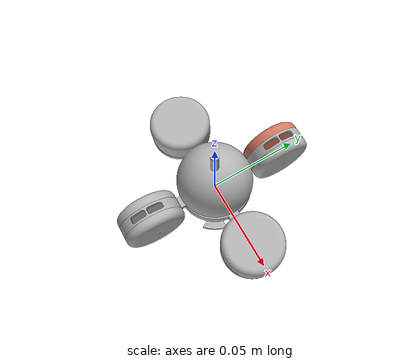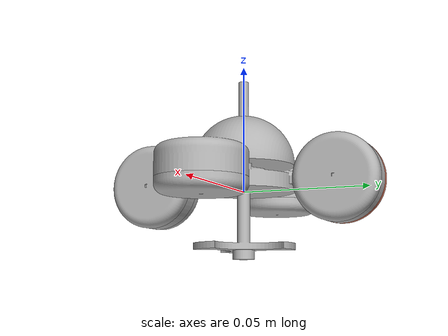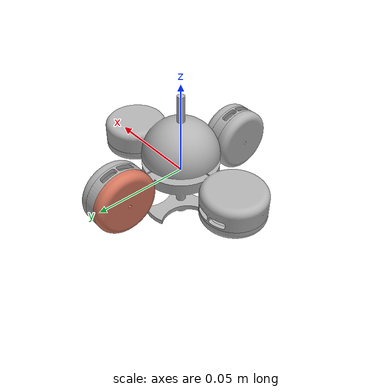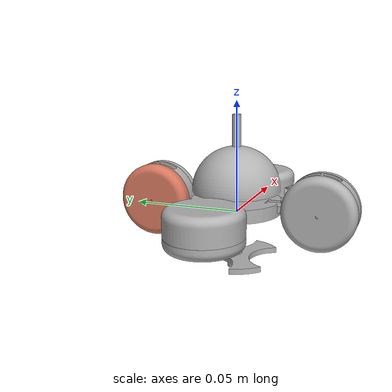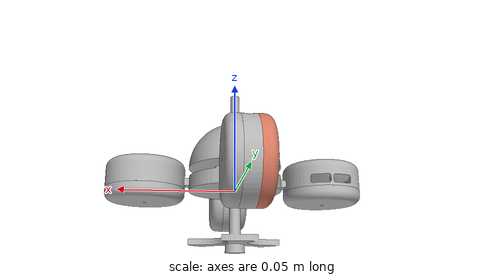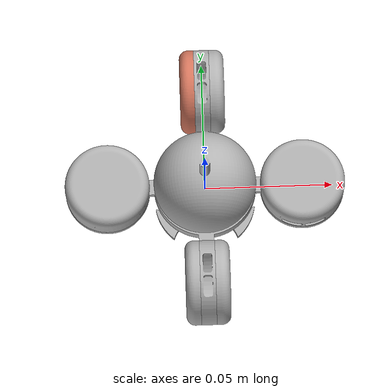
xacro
<?xml version="1.0" encoding="utf-8"?>
<robot name="Centroid_body" xmlns:xacro="http://www.ros.org/wiki/xacro">
  <!-- Dummy root link to prevent KDL inertia warning -->
  <link name="base_footprint"/>

  <joint name="base_footprint_joint" type="fixed">
    <parent link="base_footprint"/>
    <child link="base_link"/>
    <origin xyz="0 0 0" rpy="0 0 0"/>
  </joint>

  <link
    name="base_link">
    <inertial>
      <origin
        xyz="-4.8316E-11 3.2213E-18 0.0057577"
        rpy="0 0 0" />

      <mass
        value="0.039075" />

      <inertia
        ixx="7.9515E-06"
        ixy="-8.5637E-09"
        ixz="1.944E-14"
        iyy="7.7226E-06"
        iyz="-3.498E-22"
        izz="5.1331E-06" />
    </inertial>
    <visual>
      <origin
        xyz="0 0 0"
        rpy="0 0 0" />
      <geometry>
        <mesh
          filename="package://piezo_auv_description/meshes/base_link.STL" />
      </geometry>
      <material
        name="">
        <color
          rgba="0.69804 0.69804 0.69804 1" />
      </material>
    </visual>
    <collision>
      <origin
        xyz="0 0 0.012"
        rpy="0 0 0" />
        <geometry>
          <box size="0.10964625 0.11001523 0.0040815" />
        </geometry>
    </collision>
  </link>
  <gazebo reference="base_link">
    <material>Gazebo/Grey</material>
  </gazebo>

  <link
    name="left_jet_f">
    <inertial>
      <origin
        xyz="-4.3368E-19 0 -0.0038323"
        rpy="0 0 0" />
      <mass
        value="0.0075196" />
      <inertia
        ixx="4.9788E-07"
        ixy="-1.3062E-38"
        ixz="-1.0636E-23"
        iyy="4.9788E-07"
        iyz="-5.5228E-39"
        izz="9.6988E-07" />
    </inertial>
    <visual>
      <origin
        xyz="0 0 0"
        rpy="0 0 0" />
      <geometry>
        <mesh
          filename="package://piezo_auv_description/meshes/left_jet_f.STL" />
      </geometry>
      <material
        name="">
        <color
          rgba="0.83922 0.46667 0.36863 1" />
      </material>
    </visual>
    <collision>
      <origin xyz="0 0 -0.00335" rpy="0 0 0" />
      <geometry>
        <cylinder radius="0.0166" length="0.0067" />
      </geometry>
    </collision>

  </link>
  <gazebo reference="left_jet_f">
    <material>Gazebo/Orange</material>
  </gazebo>
  <joint
    name="left_jet_f_joint"
    type="fixed">
    <origin
      xyz="-0.0087 0.038482 0.0035"
      rpy="3.1416 1.5708 0" />
    <parent
      link="base_link" />
    <child
      link="left_jet_f" />
    <axis
      xyz="0 0 0" />
  </joint>
  <link
    name="left_jet_r">
    <inertial>
      <origin
        xyz="8.6736E-19 6.9389E-18 -0.0038323"
        rpy="0 0 0" />
      <mass
        value="0.0075196" />
      <inertia
        ixx="4.9788E-07"
        ixy="-1.4263E-39"
        ixz="8.4073E-24"
        iyy="4.9788E-07"
        iyz="2.2962E-39"
        izz="9.6988E-07" />
    </inertial>
    <visual>
      <origin
        xyz="0 0 0"
        rpy="0 0 0" />
      <geometry>
        <mesh
          filename="package://piezo_auv_description/meshes/left_jet_r.STL" />
      </geometry>
      <material
        name="">
        <color
          rgba="0.69804 0.69804 0.69804 1" />
      </material>
    </visual>
    <collision>
      <origin xyz="0 0 -0.00335" rpy="0 0 0" />
      <geometry>
        <cylinder radius="0.0166" length="0.0067" />
      </geometry>
    </collision>
  </link>
  <gazebo reference="left_jet_r">
    <material>Gazebo/Orange</material>
  </gazebo>
  <joint
    name="left_jet_r_joint"
    type="fixed">
    <origin
      xyz="0.0087 0.038482 0.0035"
      rpy="0 1.5708 0" />
    <parent
      link="base_link" />
    <child
      link="left_jet_r" />
    <axis
      xyz="0 0 0" />
  </joint>

  <link
    name="right_jet_f">
    <inertial>
      <origin
        xyz="0 2.7756E-17 -0.0038323"
        rpy="0 0 0" />
      <mass
        value="0.0075196" />
      <inertia
        ixx="4.9788E-07"
        ixy="3.1117E-38"
        ixz="-3.3862E-24"
        iyy="4.9788E-07"
        iyz="-3.2167E-21"
        izz="9.6988E-07" />
    </inertial>
    <visual>
      <origin
        xyz="0 0 0"
        rpy="0 0 0" />
      <geometry>
        <mesh
          filename="package://piezo_auv_description/meshes/right_jet_f.STL" />
      </geometry>
      <material
        name="">
        <color
          rgba="0.69804 0.69804 0.69804 1" />
      </material>
    </visual>
    <collision>
      <origin xyz="0 0 -0.00335" rpy="0 0 0" />
      <geometry>
        <cylinder radius="0.0166" length="0.0067" />
      </geometry>
    </collision>
  </link>
  <gazebo reference="right_jet_f">
    <material>Gazebo/Orange</material>
  </gazebo>
  <joint
    name="right_jet_f_joint"
    type="fixed">
    <origin
      xyz="-0.0087 -0.038482 0.0035"
      rpy="3.1416 1.5708 0" />
    <parent
      link="base_link" />
    <child
      link="right_jet_f" />
    <axis
      xyz="0 0 0" />
  </joint>

  <link
    name="right_jet_r">
    <inertial>
      <origin
        xyz="-3.4694E-17 0 -0.0038323"
        rpy="0 0 0" />
      <mass
        value="0.0075196" />
      <inertia
        ixx="4.9788E-07"
        ixy="3.5228E-38"
        ixz="3.3827E-21"
        iyy="4.9788E-07"
        iyz="-2.9636E-25"
        izz="9.6988E-07" />
    </inertial>
    <visual>
      <origin
        xyz="0 0 0"
        rpy="0 0 0" />
      <geometry>
        <mesh
          filename="package://piezo_auv_description/meshes/right_jet_r.STL" />
      </geometry>
      <material
        name="">
        <color
          rgba="0.69804 0.69804 0.69804 1" />
      </material>
    </visual>
    <collision>
      <origin xyz="0 0 -0.00335" rpy="0 0 0" />
      <geometry>
        <cylinder radius="0.0166" length="0.0067" />
      </geometry>
    </collision>
  </link>
  <gazebo reference="right_jet_r">
    <material>Gazebo/Orange</material>
  </gazebo>
  <joint
    name="right_jet_r_joint"
    type="fixed">
    <origin
      xyz="0.0087 -0.038482 0.0035"
      rpy="-1.5708 0 -1.5708" />
    <parent
      link="base_link" />
    <child
      link="right_jet_r" />
    <axis
      xyz="0 0 0" />
  </joint>

  <link
    name="hover_front">
    <inertial>
      <origin
        xyz="-1.2907E-18 0 -0.0038323"
        rpy="0 0 0" />
      <mass
        value="0.0075196" />
      <inertia
        ixx="4.9788E-07"
        ixy="-1.2994E-38"
        ixz="-1.5581E-25"
        iyy="4.9788E-07"
        iyz="6.5797E-24"
        izz="9.6988E-07" />
    </inertial>
    <visual>
      <origin
        xyz="0 0 0"
        rpy="0 0 0" />
      <geometry>
        <mesh
          filename="package://piezo_auv_description/meshes/hover_front.STL" />
      </geometry>
      <material
        name="">
        <color
          rgba="0.69804 0.69804 0.69804 1" />
      </material>
    </visual>
    <collision>
      <origin xyz="0 0 -0.00335" rpy="0 0 0" />
      <geometry>
        <cylinder radius="0.0166" length="0.0067" />
      </geometry>
    </collision>
  </link>
  <gazebo reference="hover_front">
    <material>Gazebo/Orange</material>
  </gazebo>
  <joint
    name="hover_front_joint"
    type="fixed">
    <origin
      xyz="0.0382758256318996 0 -0.0052"
      rpy="3.14159265358979 0 -1.5707963267949" />
    <parent
      link="base_link" />
    <child
      link="hover_front" />
    <axis
      xyz="0 0 0" />
  </joint>

  <link
    name="hover_rear">
    <inertial>
      <origin
        xyz="0 1.2125E-18 -0.0038323"
        rpy="0 0 0" />
      <mass
        value="0.0075196" />
      <inertia
        ixx="4.9788E-07"
        ixy="-5.5174E-38"
        ixz="-5.9012E-24"
        iyy="4.9788E-07"
        iyz="1.2711E-23"
        izz="9.6988E-07" />
    </inertial>
    <visual>
      <origin
        xyz="0 0 0"
        rpy="0 0 0" />
      <geometry>
        <mesh
          filename="package://piezo_auv_description/meshes/hover_rear.STL" />
      </geometry>
      <material
        name="">
        <color
          rgba="0.69804 0.69804 0.69804 1" />
      </material>
    </visual>
    <collision>
      <origin xyz="0 0 -0.00335" rpy="0 0 0" />
      <geometry>
        <cylinder radius="0.0166" length="0.0067" />
      </geometry>
    </collision>
  </link>
  <gazebo reference="hover_rear">
    <material>Gazebo/Orange</material>
  </gazebo>
  <joint
    name="hover_rear_joint"
    type="fixed">
    <origin
      xyz="-0.038276 0 -0.0052"
      rpy="3.1416 0 0" />
    <parent
      link="base_link" />
    <child
      link="hover_rear" />
    <axis
      xyz="0 0 0" />
  </joint>

    <link name="imu_link">
    <inertial>
      <mass value="0.001"/>
      <origin xyz="0 0 0" rpy="0 0 0"/>
      <inertia ixx="1e-7" iyy="1e-7" izz="1e-7" ixy="0" ixz="0" iyz="0"/>
    </inertial>
  </link>

  <joint name="imu_joint" type="fixed">
    <origin xyz="0 0 0.005" rpy="0 0 0"/>
    <parent link="base_link"/>
    <child link="imu_link"/>
    <axis xyz="0 0 0"/>
  </joint>

  <gazebo reference="imu_link">
    <sensor name="imu_sensor" type="imu">
      <always_on>1</always_on>
      <update_rate>50</update_rate>
      <visualize>true</visualize>
      <topic>imu</topic>
    </sensor>
  </gazebo>

    <gazebo>
      <plugin filename="gz-sim-hydrodynamics-system" name="gz::sim::systems::Hydrodynamics">
        <link_name>base_footprint</link_name>
        <xDotU>0.0</xDotU>
        <yDotV>0.0</yDotV>
        <zDotW>0.0</zDotW>
        <kDotP>0.0</kDotP>
        <mDotQ>0.0</mDotQ>
        <nDotR>0.0</nDotR>

        <!-- Realistic Linear Drag (Viscous Skin Friction) -->
        <xU>-0.15</xU>
        <yV>-0.15</yV>
        <zW>-0.20</zW>
        <kP>-0.001</kP>
        <mQ>-0.001</mQ>
        <nR>-0.002</nR>

        <!-- Realistic Quadratic Form Drag (Re ~ 5,270) -->
        <xUabsU>-2.95</xUabsU>
        <yVabsV>-2.95</yVabsV>
        <zWabsW>-5.28</zWabsW>
        <kPabsP>-0.0045</kPabsP>
        <mQabsQ>-0.0045</mQabsQ>
        <nRabsR>-0.0041</nRabsR>
      </plugin>
    </gazebo>

    <gazebo>
      <plugin filename="gz-sim-odometry-publisher-system"
              name="gz::sim::systems::OdometryPublisher">
        <dimensions>3</dimensions>
        <odom_frame>odom</odom_frame>
        <robot_base_frame>base_footprint</robot_base_frame>
        <publish_link_pose>true</publish_link_pose>
        <publish_sensor_tf>true</publish_sensor_tf>
        <tf_topic>/tf</tf_topic>
        <odom_topic>/odom</odom_topic>
      </plugin>
    </gazebo>

</robot>
